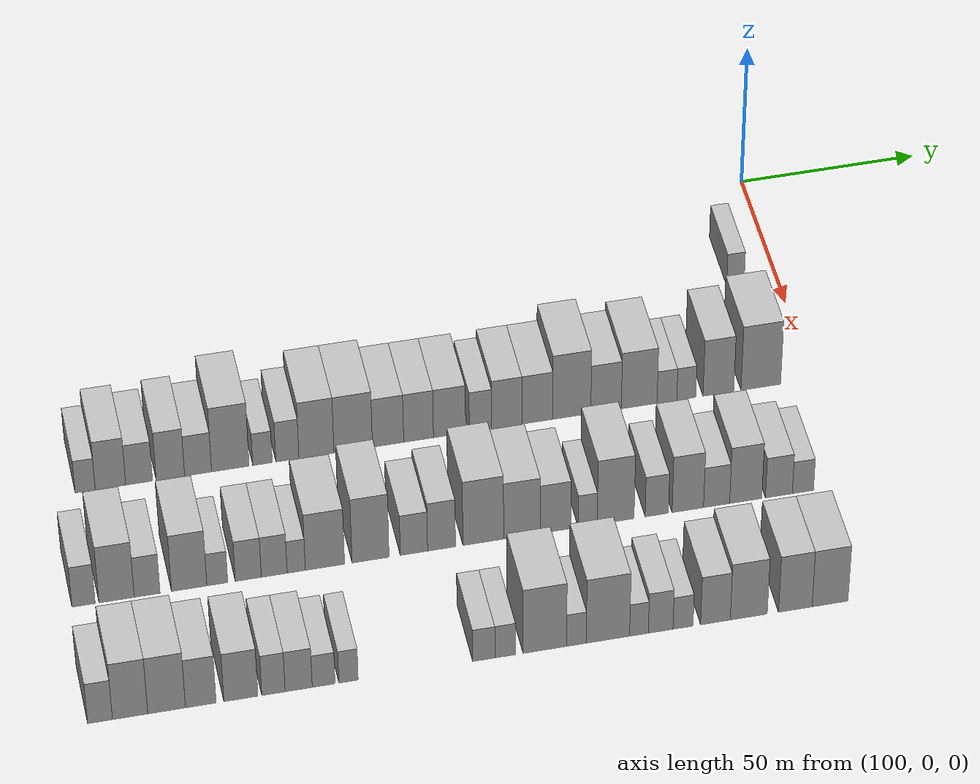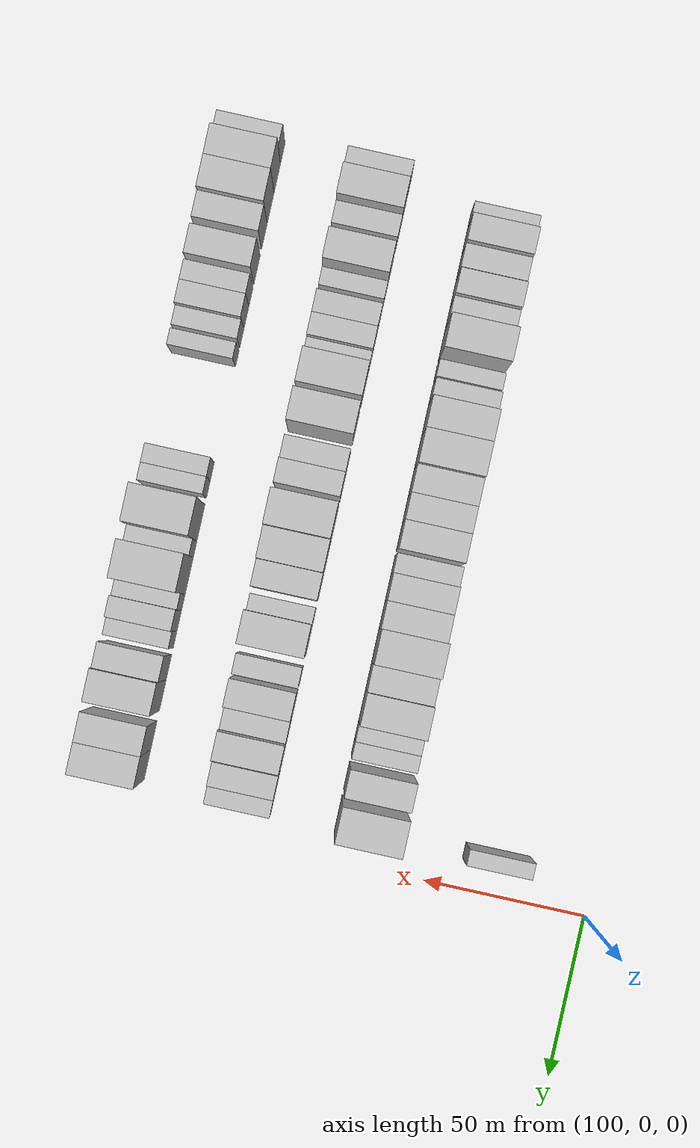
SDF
<sdf version="1.6">
 <world name="default">
  <model name="building_345">
   <static>1</static>
   <pose>130.0000 -11.8070 0 0.000000 0.000000 0.000000</pose>
   <link name="link">
    <pose>0 0 6.00 0 0 0</pose>
    <collision name="collision"><geometry><box><size>20.0000 4.9695 12.0000</size></box></geometry></collision>
    <visual name="visual">
     <cast_shadows>0</cast_shadows>
     <geometry><box><size>20.0000 4.9695 12.0000</size></box></geometry>
     <material>
      <script>
       <uri>model://HANNAS_wall/materials/scripts</uri>
       <uri>model://HANNAS_wall/materials/textures</uri>
       <name>vrc/HANNAS_wall</name>
      </script>
     </material>
    </visual>
   </link>
  </model>
  <model name="building_460">
   <static>1</static>
   <pose>170.0000 -198.8840 0 0.000000 0.000000 0.000000</pose>
   <link name="link">
    <pose>0 0 6.00 0 0 0</pose>
    <collision name="collision"><geometry><box><size>20.0000 5.3824 12.0000</size></box></geometry></collision>
    <visual name="visual">
     <cast_shadows>0</cast_shadows>
     <geometry><box><size>20.0000 5.3824 12.0000</size></box></geometry>
     <material>
      <script>
       <uri>model://HANNAS_wall/materials/scripts</uri>
       <uri>model://HANNAS_wall/materials/textures</uri>
       <name>vrc/HANNAS_wall</name>
      </script>
     </material>
    </visual>
   </link>
  </model>
  <model name="building_461">
   <static>1</static>
   <pose>170.0000 -192.1136 0 0.000000 0.000000 0.000000</pose>
   <link name="link">
    <pose>0 0 9.00 0 0 0</pose>
    <collision name="collision"><geometry><box><size>20.0000 8.1584 18.0000</size></box></geometry></collision>
    <visual name="visual">
     <cast_shadows>0</cast_shadows>
     <geometry><box><size>20.0000 8.1584 18.0000</size></box></geometry>
     <material>
      <script>
       <uri>model://HANNAS_wall/materials/scripts</uri>
       <uri>model://HANNAS_wall/materials/textures</uri>
       <name>vrc/HANNAS_wall</name>
      </script>
     </material>
    </visual>
   </link>
  </model>
  <model name="building_462">
   <static>1</static>
   <pose>170.0000 -184.4516 0 0.000000 0.000000 0.000000</pose>
   <link name="link">
    <pose>0 0 7.50 0 0 0</pose>
    <collision name="collision"><geometry><box><size>20.0000 7.1656 15.0000</size></box></geometry></collision>
    <visual name="visual">
     <cast_shadows>0</cast_shadows>
     <geometry><box><size>20.0000 7.1656 15.0000</size></box></geometry>
     <material>
      <script>
       <uri>model://HANNAS_wall/materials/scripts</uri>
       <uri>model://HANNAS_wall/materials/textures</uri>
       <name>vrc/HANNAS_wall</name>
      </script>
     </material>
    </visual>
   </link>
  </model>
  <model name="building_463">
   <static>1</static>
   <pose>170.0000 -176.0557 0 0.000000 0.000000 0.000000</pose>
   <link name="link">
    <pose>0 0 9.00 0 0 0</pose>
    <collision name="collision"><geometry><box><size>20.0000 7.6261 18.0000</size></box></geometry></collision>
    <visual name="visual">
     <cast_shadows>0</cast_shadows>
     <geometry><box><size>20.0000 7.6261 18.0000</size></box></geometry>
     <material>
      <script>
       <uri>model://HANNAS_wall/materials/scripts</uri>
       <uri>model://HANNAS_wall/materials/textures</uri>
       <name>vrc/HANNAS_wall</name>
      </script>
     </material>
    </visual>
   </link>
  </model>
  <model name="building_464">
   <static>1</static>
   <pose>170.0000 -168.6132 0 0.000000 0.000000 0.000000</pose>
   <link name="link">
    <pose>0 0 7.50 0 0 0</pose>
    <collision name="collision"><geometry><box><size>20.0000 7.2589 15.0000</size></box></geometry></collision>
    <visual name="visual">
     <cast_shadows>0</cast_shadows>
     <geometry><box><size>20.0000 7.2589 15.0000</size></box></geometry>
     <material>
      <script>
       <uri>model://HANNAS_wall/materials/scripts</uri>
       <uri>model://HANNAS_wall/materials/textures</uri>
       <name>vrc/HANNAS_wall</name>
      </script>
     </material>
    </visual>
   </link>
  </model>
  <model name="building_465">
   <static>1</static>
   <pose>170.0000 -159.9315 0 0.000000 0.000000 0.000000</pose>
   <link name="link">
    <pose>0 0 12.00 0 0 0</pose>
    <collision name="collision"><geometry><box><size>20.0000 10.1045 24.0000</size></box></geometry></collision>
    <visual name="visual">
     <cast_shadows>0</cast_shadows>
     <geometry><box><size>20.0000 10.1045 24.0000</size></box></geometry>
     <material>
      <script>
       <uri>model://HANNAS_wall/materials/scripts</uri>
       <uri>model://HANNAS_wall/materials/textures</uri>
       <name>vrc/HANNAS_wall</name>
      </script>
     </material>
    </visual>
   </link>
  </model>
  <model name="building_466">
   <static>1</static>
   <pose>170.0000 -151.2619 0 0.000000 0.000000 0.000000</pose>
   <link name="link">
    <pose>0 0 6.00 0 0 0</pose>
    <collision name="collision"><geometry><box><size>20.0000 5.2348 12.0000</size></box></geometry></collision>
    <visual name="visual">
     <cast_shadows>0</cast_shadows>
     <geometry><box><size>20.0000 5.2348 12.0000</size></box></geometry>
     <material>
      <script>
       <uri>model://HANNAS_wall/materials/scripts</uri>
       <uri>model://HANNAS_wall/materials/textures</uri>
       <name>vrc/HANNAS_wall</name>
      </script>
     </material>
    </visual>
   </link>
  </model>
  <model name="building_467">
   <static>1</static>
   <pose>170.0000 -144.5285 0 0.000000 0.000000 0.000000</pose>
   <link name="link">
    <pose>0 0 7.50 0 0 0</pose>
    <collision name="collision"><geometry><box><size>20.0000 6.2319 15.0000</size></box></geometry></collision>
    <visual name="visual">
     <cast_shadows>0</cast_shadows>
     <geometry><box><size>20.0000 6.2319 15.0000</size></box></geometry>
     <material>
      <script>
       <uri>model://HANNAS_wall/materials/scripts</uri>
       <uri>model://HANNAS_wall/materials/textures</uri>
       <name>vrc/HANNAS_wall</name>
      </script>
     </material>
    </visual>
   </link>
  </model>
  <model name="building_468">
   <static>1</static>
   <pose>170.0000 -136.6634 0 0.000000 0.000000 0.000000</pose>
   <link name="link">
    <pose>0 0 10.50 0 0 0</pose>
    <collision name="collision"><geometry><box><size>20.0000 9.4982 21.0000</size></box></geometry></collision>
    <visual name="visual">
     <cast_shadows>0</cast_shadows>
     <geometry><box><size>20.0000 9.4982 21.0000</size></box></geometry>
     <material>
      <script>
       <uri>model://HANNAS_wall/materials/scripts</uri>
       <uri>model://HANNAS_wall/materials/textures</uri>
       <name>vrc/HANNAS_wall</name>
      </script>
     </material>
    </visual>
   </link>
  </model>
  <model name="building_469">
   <static>1</static>
   <pose>170.0000 -126.7007 0 0.000000 0.000000 0.000000</pose>
   <link name="link">
    <pose>0 0 10.50 0 0 0</pose>
    <collision name="collision"><geometry><box><size>20.0000 10.4273 21.0000</size></box></geometry></collision>
    <visual name="visual">
     <cast_shadows>0</cast_shadows>
     <geometry><box><size>20.0000 10.4273 21.0000</size></box></geometry>
     <material>
      <script>
       <uri>model://HANNAS_wall/materials/scripts</uri>
       <uri>model://HANNAS_wall/materials/textures</uri>
       <name>vrc/HANNAS_wall</name>
      </script>
     </material>
    </visual>
   </link>
  </model>
  <model name="building_470">
   <static>1</static>
   <pose>170.0000 -117.2380 0 0.000000 0.000000 0.000000</pose>
   <link name="link">
    <pose>0 0 9.00 0 0 0</pose>
    <collision name="collision"><geometry><box><size>20.0000 8.4981 18.0000</size></box></geometry></collision>
    <visual name="visual">
     <cast_shadows>0</cast_shadows>
     <geometry><box><size>20.0000 8.4981 18.0000</size></box></geometry>
     <material>
      <script>
       <uri>model://HANNAS_wall/materials/scripts</uri>
       <uri>model://HANNAS_wall/materials/textures</uri>
       <name>vrc/HANNAS_wall</name>
      </script>
     </material>
    </visual>
   </link>
  </model>
  <model name="building_471">
   <static>1</static>
   <pose>170.0000 -108.9257 0 0.000000 0.000000 0.000000</pose>
   <link name="link">
    <pose>0 0 9.00 0 0 0</pose>
    <collision name="collision"><geometry><box><size>20.0000 8.1265 18.0000</size></box></geometry></collision>
    <visual name="visual">
     <cast_shadows>0</cast_shadows>
     <geometry><box><size>20.0000 8.1265 18.0000</size></box></geometry>
     <material>
      <script>
       <uri>model://HANNAS_wall/materials/scripts</uri>
       <uri>model://HANNAS_wall/materials/textures</uri>
       <name>vrc/HANNAS_wall</name>
      </script>
     </material>
    </visual>
   </link>
  </model>
  <model name="building_472">
   <static>1</static>
   <pose>170.0000 -100.4618 0 0.000000 0.000000 0.000000</pose>
   <link name="link">
    <pose>0 0 9.00 0 0 0</pose>
    <collision name="collision"><geometry><box><size>20.0000 8.8011 18.0000</size></box></geometry></collision>
    <visual name="visual">
     <cast_shadows>0</cast_shadows>
     <geometry><box><size>20.0000 8.8011 18.0000</size></box></geometry>
     <material>
      <script>
       <uri>model://HANNAS_wall/materials/scripts</uri>
       <uri>model://HANNAS_wall/materials/textures</uri>
       <name>vrc/HANNAS_wall</name>
      </script>
     </material>
    </visual>
   </link>
  </model>
  <model name="building_473">
   <static>1</static>
   <pose>170.0000 -92.0068 0 0.000000 0.000000 0.000000</pose>
   <link name="link">
    <pose>0 0 7.50 0 0 0</pose>
    <collision name="collision"><geometry><box><size>20.0000 6.1089 15.0000</size></box></geometry></collision>
    <visual name="visual">
     <cast_shadows>0</cast_shadows>
     <geometry><box><size>20.0000 6.1089 15.0000</size></box></geometry>
     <material>
      <script>
       <uri>model://HANNAS_wall/materials/scripts</uri>
       <uri>model://HANNAS_wall/materials/textures</uri>
       <name>vrc/HANNAS_wall</name>
      </script>
     </material>
    </visual>
   </link>
  </model>
  <model name="building_474">
   <static>1</static>
   <pose>170.0000 -84.8008 0 0.000000 0.000000 0.000000</pose>
   <link name="link">
    <pose>0 0 9.00 0 0 0</pose>
    <collision name="collision"><geometry><box><size>20.0000 8.3031 18.0000</size></box></geometry></collision>
    <visual name="visual">
     <cast_shadows>0</cast_shadows>
     <geometry><box><size>20.0000 8.3031 18.0000</size></box></geometry>
     <material>
      <script>
       <uri>model://HANNAS_wall/materials/scripts</uri>
       <uri>model://HANNAS_wall/materials/textures</uri>
       <name>vrc/HANNAS_wall</name>
      </script>
     </material>
    </visual>
   </link>
  </model>
  <model name="building_475">
   <static>1</static>
   <pose>170.0000 -76.4281 0 0.000000 0.000000 0.000000</pose>
   <link name="link">
    <pose>0 0 9.00 0 0 0</pose>
    <collision name="collision"><geometry><box><size>20.0000 8.4422 18.0000</size></box></geometry></collision>
    <visual name="visual">
     <cast_shadows>0</cast_shadows>
     <geometry><box><size>20.0000 8.4422 18.0000</size></box></geometry>
     <material>
      <script>
       <uri>model://HANNAS_wall/materials/scripts</uri>
       <uri>model://HANNAS_wall/materials/textures</uri>
       <name>vrc/HANNAS_wall</name>
      </script>
     </material>
    </visual>
   </link>
  </model>
  <model name="building_476">
   <static>1</static>
   <pose>170.0000 -66.9580 0 0.000000 0.000000 0.000000</pose>
   <link name="link">
    <pose>0 0 12.00 0 0 0</pose>
    <collision name="collision"><geometry><box><size>20.0000 10.4980 24.0000</size></box></geometry></collision>
    <visual name="visual">
     <cast_shadows>0</cast_shadows>
     <geometry><box><size>20.0000 10.4980 24.0000</size></box></geometry>
     <material>
      <script>
       <uri>model://HANNAS_wall/materials/scripts</uri>
       <uri>model://HANNAS_wall/materials/textures</uri>
       <name>vrc/HANNAS_wall</name>
      </script>
     </material>
    </visual>
   </link>
  </model>
  <model name="building_477">
   <static>1</static>
   <pose>170.0000 -57.5117 0 0.000000 0.000000 0.000000</pose>
   <link name="link">
    <pose>0 0 9.00 0 0 0</pose>
    <collision name="collision"><geometry><box><size>20.0000 8.3945 18.0000</size></box></geometry></collision>
    <visual name="visual">
     <cast_shadows>0</cast_shadows>
     <geometry><box><size>20.0000 8.3945 18.0000</size></box></geometry>
     <material>
      <script>
       <uri>model://HANNAS_wall/materials/scripts</uri>
       <uri>model://HANNAS_wall/materials/textures</uri>
       <name>vrc/HANNAS_wall</name>
      </script>
     </material>
    </visual>
   </link>
  </model>
  <model name="building_478">
   <static>1</static>
   <pose>170.0000 -48.3694 0 0.000000 0.000000 0.000000</pose>
   <link name="link">
    <pose>0 0 10.50 0 0 0</pose>
    <collision name="collision"><geometry><box><size>20.0000 9.8902 21.0000</size></box></geometry></collision>
    <visual name="visual">
     <cast_shadows>0</cast_shadows>
     <geometry><box><size>20.0000 9.8902 21.0000</size></box></geometry>
     <material>
      <script>
       <uri>model://HANNAS_wall/materials/scripts</uri>
       <uri>model://HANNAS_wall/materials/textures</uri>
       <name>vrc/HANNAS_wall</name>
      </script>
     </material>
    </visual>
   </link>
  </model>
  <model name="building_479">
   <static>1</static>
   <pose>170.0000 -40.6922 0 0.000000 0.000000 0.000000</pose>
   <link name="link">
    <pose>0 0 6.00 0 0 0</pose>
    <collision name="collision"><geometry><box><size>20.0000 5.4642 12.0000</size></box></geometry></collision>
    <visual name="visual">
     <cast_shadows>0</cast_shadows>
     <geometry><box><size>20.0000 5.4642 12.0000</size></box></geometry>
     <material>
      <script>
       <uri>model://HANNAS_wall/materials/scripts</uri>
       <uri>model://HANNAS_wall/materials/textures</uri>
       <name>vrc/HANNAS_wall</name>
      </script>
     </material>
    </visual>
   </link>
  </model>
  <model name="building_480">
   <static>1</static>
   <pose>170.0000 -35.3330 0 0.000000 0.000000 0.000000</pose>
   <link name="link">
    <pose>0 0 6.00 0 0 0</pose>
    <collision name="collision"><geometry><box><size>20.0000 5.2542 12.0000</size></box></geometry></collision>
    <visual name="visual">
     <cast_shadows>0</cast_shadows>
     <geometry><box><size>20.0000 5.2542 12.0000</size></box></geometry>
     <material>
      <script>
       <uri>model://HANNAS_wall/materials/scripts</uri>
       <uri>model://HANNAS_wall/materials/textures</uri>
       <name>vrc/HANNAS_wall</name>
      </script>
     </material>
    </visual>
   </link>
  </model>
  <model name="building_481">
   <static>1</static>
   <pose>170.0000 -26.4306 0 0.000000 0.000000 0.000000</pose>
   <link name="link">
    <pose>0 0 10.50 0 0 0</pose>
    <collision name="collision"><geometry><box><size>20.0000 8.5505 21.0000</size></box></geometry></collision>
    <visual name="visual">
     <cast_shadows>0</cast_shadows>
     <geometry><box><size>20.0000 8.5505 21.0000</size></box></geometry>
     <material>
      <script>
       <uri>model://HANNAS_wall/materials/scripts</uri>
       <uri>model://HANNAS_wall/materials/textures</uri>
       <name>vrc/HANNAS_wall</name>
      </script>
     </material>
    </visual>
   </link>
  </model>
  <model name="building_482">
   <static>1</static>
   <pose>170.0000 -14.6425 0 0.000000 0.000000 0.000000</pose>
   <link name="link">
    <pose>0 0 12.00 0 0 0</pose>
    <collision name="collision"><geometry><box><size>20.0000 11.0256 24.0000</size></box></geometry></collision>
    <visual name="visual">
     <cast_shadows>0</cast_shadows>
     <geometry><box><size>20.0000 11.0256 24.0000</size></box></geometry>
     <material>
      <script>
       <uri>model://HANNAS_wall/materials/scripts</uri>
       <uri>model://HANNAS_wall/materials/textures</uri>
       <name>vrc/HANNAS_wall</name>
      </script>
     </material>
    </visual>
   </link>
  </model>
  <model name="building_601">
   <static>1</static>
   <pose>210.0000 -205.2574 0 0.000000 0.000000 0.000000</pose>
   <link name="link">
    <pose>0 0 7.50 0 0 0</pose>
    <collision name="collision"><geometry><box><size>20.0000 6.0528 15.0000</size></box></geometry></collision>
    <visual name="visual">
     <cast_shadows>0</cast_shadows>
     <geometry><box><size>20.0000 6.0528 15.0000</size></box></geometry>
     <material>
      <script>
       <uri>model://HANNAS_wall/materials/scripts</uri>
       <uri>model://HANNAS_wall/materials/textures</uri>
       <name>vrc/HANNAS_wall</name>
      </script>
     </material>
    </visual>
   </link>
  </model>
  <model name="building_602">
   <static>1</static>
   <pose>210.0000 -196.6105 0 0.000000 0.000000 0.000000</pose>
   <link name="link">
    <pose>0 0 10.50 0 0 0</pose>
    <collision name="collision"><geometry><box><size>20.0000 9.2409 21.0000</size></box></geometry></collision>
    <visual name="visual">
     <cast_shadows>0</cast_shadows>
     <geometry><box><size>20.0000 9.2409 21.0000</size></box></geometry>
     <material>
      <script>
       <uri>model://HANNAS_wall/materials/scripts</uri>
       <uri>model://HANNAS_wall/materials/textures</uri>
       <name>vrc/HANNAS_wall</name>
      </script>
     </material>
    </visual>
   </link>
  </model>
  <model name="building_603">
   <static>1</static>
   <pose>210.0000 -188.6136 0 0.000000 0.000000 0.000000</pose>
   <link name="link">
    <pose>0 0 7.50 0 0 0</pose>
    <collision name="collision"><geometry><box><size>20.0000 6.7531 15.0000</size></box></geometry></collision>
    <visual name="visual">
     <cast_shadows>0</cast_shadows>
     <geometry><box><size>20.0000 6.7531 15.0000</size></box></geometry>
     <material>
      <script>
       <uri>model://HANNAS_wall/materials/scripts</uri>
       <uri>model://HANNAS_wall/materials/textures</uri>
       <name>vrc/HANNAS_wall</name>
      </script>
     </material>
    </visual>
   </link>
  </model>
  <model name="building_604">
   <static>1</static>
   <pose>210.0000 -177.5851 0 0.000000 0.000000 0.000000</pose>
   <link name="link">
    <pose>0 0 10.50 0 0 0</pose>
    <collision name="collision"><geometry><box><size>20.0000 9.3037 21.0000</size></box></geometry></collision>
    <visual name="visual">
     <cast_shadows>0</cast_shadows>
     <geometry><box><size>20.0000 9.3037 21.0000</size></box></geometry>
     <material>
      <script>
       <uri>model://HANNAS_wall/materials/scripts</uri>
       <uri>model://HANNAS_wall/materials/textures</uri>
       <name>vrc/HANNAS_wall</name>
      </script>
     </material>
    </visual>
   </link>
  </model>
  <model name="building_605">
   <static>1</static>
   <pose>210.0000 -170.1938 0 0.000000 0.000000 0.000000</pose>
   <link name="link">
    <pose>0 0 6.00 0 0 0</pose>
    <collision name="collision"><geometry><box><size>20.0000 5.4789 12.0000</size></box></geometry></collision>
    <visual name="visual">
     <cast_shadows>0</cast_shadows>
     <geometry><box><size>20.0000 5.4789 12.0000</size></box></geometry>
     <material>
      <script>
       <uri>model://HANNAS_wall/materials/scripts</uri>
       <uri>model://HANNAS_wall/materials/textures</uri>
       <name>vrc/HANNAS_wall</name>
      </script>
     </material>
    </visual>
   </link>
  </model>
  <model name="building_606">
   <static>1</static>
   <pose>210.0000 -162.0174 0 0.000000 0.000000 0.000000</pose>
   <link name="link">
    <pose>0 0 7.50 0 0 0</pose>
    <collision name="collision"><geometry><box><size>20.0000 6.8739 15.0000</size></box></geometry></collision>
    <visual name="visual">
     <cast_shadows>0</cast_shadows>
     <geometry><box><size>20.0000 6.8739 15.0000</size></box></geometry>
     <material>
      <script>
       <uri>model://HANNAS_wall/materials/scripts</uri>
       <uri>model://HANNAS_wall/materials/textures</uri>
       <name>vrc/HANNAS_wall</name>
      </script>
     </material>
    </visual>
   </link>
  </model>
  <model name="building_607">
   <static>1</static>
   <pose>210.0000 -155.1676 0 0.000000 0.000000 0.000000</pose>
   <link name="link">
    <pose>0 0 7.50 0 0 0</pose>
    <collision name="collision"><geometry><box><size>20.0000 6.8256 15.0000</size></box></geometry></collision>
    <visual name="visual">
     <cast_shadows>0</cast_shadows>
     <geometry><box><size>20.0000 6.8256 15.0000</size></box></geometry>
     <material>
      <script>
       <uri>model://HANNAS_wall/materials/scripts</uri>
       <uri>model://HANNAS_wall/materials/textures</uri>
       <name>vrc/HANNAS_wall</name>
      </script>
     </material>
    </visual>
   </link>
  </model>
  <model name="building_608">
   <static>1</static>
   <pose>210.0000 -149.3504 0 0.000000 0.000000 0.000000</pose>
   <link name="link">
    <pose>0 0 6.00 0 0 0</pose>
    <collision name="collision"><geometry><box><size>20.0000 4.8087 12.0000</size></box></geometry></collision>
    <visual name="visual">
     <cast_shadows>0</cast_shadows>
     <geometry><box><size>20.0000 4.8087 12.0000</size></box></geometry>
     <material>
      <script>
       <uri>model://HANNAS_wall/materials/scripts</uri>
       <uri>model://HANNAS_wall/materials/textures</uri>
       <name>vrc/HANNAS_wall</name>
      </script>
     </material>
    </visual>
   </link>
  </model>
  <model name="building_609">
   <static>1</static>
   <pose>210.0000 -141.7589 0 0.000000 0.000000 0.000000</pose>
   <link name="link">
    <pose>0 0 10.50 0 0 0</pose>
    <collision name="collision"><geometry><box><size>20.0000 10.3744 21.0000</size></box></geometry></collision>
    <visual name="visual">
     <cast_shadows>0</cast_shadows>
     <geometry><box><size>20.0000 10.3744 21.0000</size></box></geometry>
     <material>
      <script>
       <uri>model://HANNAS_wall/materials/scripts</uri>
       <uri>model://HANNAS_wall/materials/textures</uri>
       <name>vrc/HANNAS_wall</name>
      </script>
     </material>
    </visual>
   </link>
  </model>
  <model name="building_610">
   <static>1</static>
   <pose>210.0000 -129.6596 0 0.000000 0.000000 0.000000</pose>
   <link name="link">
    <pose>0 0 12.00 0 0 0</pose>
    <collision name="collision"><geometry><box><size>20.0000 9.8242 24.0000</size></box></geometry></collision>
    <visual name="visual">
     <cast_shadows>0</cast_shadows>
     <geometry><box><size>20.0000 9.8242 24.0000</size></box></geometry>
     <material>
      <script>
       <uri>model://HANNAS_wall/materials/scripts</uri>
       <uri>model://HANNAS_wall/materials/textures</uri>
       <name>vrc/HANNAS_wall</name>
      </script>
     </material>
    </visual>
   </link>
  </model>
  <model name="building_611">
   <static>1</static>
   <pose>210.0000 -118.1102 0 0.000000 0.000000 0.000000</pose>
   <link name="link">
    <pose>0 0 7.50 0 0 0</pose>
    <collision name="collision"><geometry><box><size>20.0000 7.2744 15.0000</size></box></geometry></collision>
    <visual name="visual">
     <cast_shadows>0</cast_shadows>
     <geometry><box><size>20.0000 7.2744 15.0000</size></box></geometry>
     <material>
      <script>
       <uri>model://HANNAS_wall/materials/scripts</uri>
       <uri>model://HANNAS_wall/materials/textures</uri>
       <name>vrc/HANNAS_wall</name>
      </script>
     </material>
    </visual>
   </link>
  </model>
  <model name="building_612">
   <static>1</static>
   <pose>210.0000 -110.7528 0 0.000000 0.000000 0.000000</pose>
   <link name="link">
    <pose>0 0 9.00 0 0 0</pose>
    <collision name="collision"><geometry><box><size>20.0000 7.4405 18.0000</size></box></geometry></collision>
    <visual name="visual">
     <cast_shadows>0</cast_shadows>
     <geometry><box><size>20.0000 7.4405 18.0000</size></box></geometry>
     <material>
      <script>
       <uri>model://HANNAS_wall/materials/scripts</uri>
       <uri>model://HANNAS_wall/materials/textures</uri>
       <name>vrc/HANNAS_wall</name>
      </script>
     </material>
    </visual>
   </link>
  </model>
  <model name="building_613">
   <static>1</static>
   <pose>210.0000 -99.5945 0 0.000000 0.000000 0.000000</pose>
   <link name="link">
    <pose>0 0 12.00 0 0 0</pose>
    <collision name="collision"><geometry><box><size>20.0000 10.8760 24.0000</size></box></geometry></collision>
    <visual name="visual">
     <cast_shadows>0</cast_shadows>
     <geometry><box><size>20.0000 10.8760 24.0000</size></box></geometry>
     <material>
      <script>
       <uri>model://HANNAS_wall/materials/scripts</uri>
       <uri>model://HANNAS_wall/materials/textures</uri>
       <name>vrc/HANNAS_wall</name>
      </script>
     </material>
    </visual>
   </link>
  </model>
  <model name="building_614">
   <static>1</static>
   <pose>210.0000 -89.2418 0 0.000000 0.000000 0.000000</pose>
   <link name="link">
    <pose>0 0 10.50 0 0 0</pose>
    <collision name="collision"><geometry><box><size>20.0000 9.8294 21.0000</size></box></geometry></collision>
    <visual name="visual">
     <cast_shadows>0</cast_shadows>
     <geometry><box><size>20.0000 9.8294 21.0000</size></box></geometry>
     <material>
      <script>
       <uri>model://HANNAS_wall/materials/scripts</uri>
       <uri>model://HANNAS_wall/materials/textures</uri>
       <name>vrc/HANNAS_wall</name>
      </script>
     </material>
    </visual>
   </link>
  </model>
  <model name="building_615">
   <static>1</static>
   <pose>210.0000 -80.2219 0 0.000000 0.000000 0.000000</pose>
   <link name="link">
    <pose>0 0 9.00 0 0 0</pose>
    <collision name="collision"><geometry><box><size>20.0000 8.2106 18.0000</size></box></geometry></collision>
    <visual name="visual">
     <cast_shadows>0</cast_shadows>
     <geometry><box><size>20.0000 8.2106 18.0000</size></box></geometry>
     <material>
      <script>
       <uri>model://HANNAS_wall/materials/scripts</uri>
       <uri>model://HANNAS_wall/materials/textures</uri>
       <name>vrc/HANNAS_wall</name>
      </script>
     </material>
    </visual>
   </link>
  </model>
  <model name="building_616">
   <static>1</static>
   <pose>210.0000 -71.5621 0 0.000000 0.000000 0.000000</pose>
   <link name="link">
    <pose>0 0 6.00 0 0 0</pose>
    <collision name="collision"><geometry><box><size>20.0000 5.1090 12.0000</size></box></geometry></collision>
    <visual name="visual">
     <cast_shadows>0</cast_shadows>
     <geometry><box><size>20.0000 5.1090 12.0000</size></box></geometry>
     <material>
      <script>
       <uri>model://HANNAS_wall/materials/scripts</uri>
       <uri>model://HANNAS_wall/materials/textures</uri>
       <name>vrc/HANNAS_wall</name>
      </script>
     </material>
    </visual>
   </link>
  </model>
  <model name="building_617">
   <static>1</static>
   <pose>210.0000 -64.0339 0 0.000000 0.000000 0.000000</pose>
   <link name="link">
    <pose>0 0 12.00 0 0 0</pose>
    <collision name="collision"><geometry><box><size>20.0000 9.9475 24.0000</size></box></geometry></collision>
    <visual name="visual">
     <cast_shadows>0</cast_shadows>
     <geometry><box><size>20.0000 9.9475 24.0000</size></box></geometry>
     <material>
      <script>
       <uri>model://HANNAS_wall/materials/scripts</uri>
       <uri>model://HANNAS_wall/materials/textures</uri>
       <name>vrc/HANNAS_wall</name>
      </script>
     </material>
    </visual>
   </link>
  </model>
  <model name="building_618">
   <static>1</static>
   <pose>210.0000 -52.9132 0 0.000000 0.000000 0.000000</pose>
   <link name="link">
    <pose>0 0 7.50 0 0 0</pose>
    <collision name="collision"><geometry><box><size>20.0000 6.2937 15.0000</size></box></geometry></collision>
    <visual name="visual">
     <cast_shadows>0</cast_shadows>
     <geometry><box><size>20.0000 6.2937 15.0000</size></box></geometry>
     <material>
      <script>
       <uri>model://HANNAS_wall/materials/scripts</uri>
       <uri>model://HANNAS_wall/materials/textures</uri>
       <name>vrc/HANNAS_wall</name>
      </script>
     </material>
    </visual>
   </link>
  </model>
  <model name="building_619">
   <static>1</static>
   <pose>210.0000 -44.5080 0 0.000000 0.000000 0.000000</pose>
   <link name="link">
    <pose>0 0 10.50 0 0 0</pose>
    <collision name="collision"><geometry><box><size>20.0000 8.5167 21.0000</size></box></geometry></collision>
    <visual name="visual">
     <cast_shadows>0</cast_shadows>
     <geometry><box><size>20.0000 8.5167 21.0000</size></box></geometry>
     <material>
      <script>
       <uri>model://HANNAS_wall/materials/scripts</uri>
       <uri>model://HANNAS_wall/materials/textures</uri>
       <name>vrc/HANNAS_wall</name>
      </script>
     </material>
    </visual>
   </link>
  </model>
  <model name="building_620">
   <static>1</static>
   <pose>210.0000 -36.7053 0 0.000000 0.000000 0.000000</pose>
   <link name="link">
    <pose>0 0 7.50 0 0 0</pose>
    <collision name="collision"><geometry><box><size>20.0000 7.0887 15.0000</size></box></geometry></collision>
    <visual name="visual">
     <cast_shadows>0</cast_shadows>
     <geometry><box><size>20.0000 7.0887 15.0000</size></box></geometry>
     <material>
      <script>
       <uri>model://HANNAS_wall/materials/scripts</uri>
       <uri>model://HANNAS_wall/materials/textures</uri>
       <name>vrc/HANNAS_wall</name>
      </script>
     </material>
    </visual>
   </link>
  </model>
  <model name="building_621">
   <static>1</static>
   <pose>210.0000 -28.7943 0 0.000000 0.000000 0.000000</pose>
   <link name="link">
    <pose>0 0 10.50 0 0 0</pose>
    <collision name="collision"><geometry><box><size>20.0000 8.7333 21.0000</size></box></geometry></collision>
    <visual name="visual">
     <cast_shadows>0</cast_shadows>
     <geometry><box><size>20.0000 8.7333 21.0000</size></box></geometry>
     <material>
      <script>
       <uri>model://HANNAS_wall/materials/scripts</uri>
       <uri>model://HANNAS_wall/materials/textures</uri>
       <name>vrc/HANNAS_wall</name>
      </script>
     </material>
    </visual>
   </link>
  </model>
  <model name="building_622">
   <static>1</static>
   <pose>210.0000 -19.7703 0 0.000000 0.000000 0.000000</pose>
   <link name="link">
    <pose>0 0 7.50 0 0 0</pose>
    <collision name="collision"><geometry><box><size>20.0000 7.3146 15.0000</size></box></geometry></collision>
    <visual name="visual">
     <cast_shadows>0</cast_shadows>
     <geometry><box><size>20.0000 7.3146 15.0000</size></box></geometry>
     <material>
      <script>
       <uri>model://HANNAS_wall/materials/scripts</uri>
       <uri>model://HANNAS_wall/materials/textures</uri>
       <name>vrc/HANNAS_wall</name>
      </script>
     </material>
    </visual>
   </link>
  </model>
  <model name="building_623">
   <static>1</static>
   <pose>210.0000 -13.2106 0 0.000000 0.000000 0.000000</pose>
   <link name="link">
    <pose>0 0 6.00 0 0 0</pose>
    <collision name="collision"><geometry><box><size>20.0000 5.8049 12.0000</size></box></geometry></collision>
    <visual name="visual">
     <cast_shadows>0</cast_shadows>
     <geometry><box><size>20.0000 5.8049 12.0000</size></box></geometry>
     <material>
      <script>
       <uri>model://HANNAS_wall/materials/scripts</uri>
       <uri>model://HANNAS_wall/materials/textures</uri>
       <name>vrc/HANNAS_wall</name>
      </script>
     </material>
    </visual>
   </link>
  </model>
  <model name="building_741">
   <static>1</static>
   <pose>250.0000 -207.0063 0 0.000000 0.000000 0.000000</pose>
   <link name="link">
    <pose>0 0 7.50 0 0 0</pose>
    <collision name="collision"><geometry><box><size>20.0000 6.3609 15.0000</size></box></geometry></collision>
    <visual name="visual">
     <cast_shadows>0</cast_shadows>
     <geometry><box><size>20.0000 6.3609 15.0000</size></box></geometry>
     <material>
      <script>
       <uri>model://HANNAS_wall/materials/scripts</uri>
       <uri>model://HANNAS_wall/materials/textures</uri>
       <name>vrc/HANNAS_wall</name>
      </script>
     </material>
    </visual>
   </link>
  </model>
  <model name="building_742">
   <static>1</static>
   <pose>250.0000 -199.3080 0 0.000000 0.000000 0.000000</pose>
   <link name="link">
    <pose>0 0 10.50 0 0 0</pose>
    <collision name="collision"><geometry><box><size>20.0000 9.0356 21.0000</size></box></geometry></collision>
    <visual name="visual">
     <cast_shadows>0</cast_shadows>
     <geometry><box><size>20.0000 9.0356 21.0000</size></box></geometry>
     <material>
      <script>
       <uri>model://HANNAS_wall/materials/scripts</uri>
       <uri>model://HANNAS_wall/materials/textures</uri>
       <name>vrc/HANNAS_wall</name>
      </script>
     </material>
    </visual>
   </link>
  </model>
  <model name="building_743">
   <static>1</static>
   <pose>250.0000 -189.9543 0 0.000000 0.000000 0.000000</pose>
   <link name="link">
    <pose>0 0 10.50 0 0 0</pose>
    <collision name="collision"><geometry><box><size>20.0000 9.6719 21.0000</size></box></geometry></collision>
    <visual name="visual">
     <cast_shadows>0</cast_shadows>
     <geometry><box><size>20.0000 9.6719 21.0000</size></box></geometry>
     <material>
      <script>
       <uri>model://HANNAS_wall/materials/scripts</uri>
       <uri>model://HANNAS_wall/materials/textures</uri>
       <name>vrc/HANNAS_wall</name>
      </script>
     </material>
    </visual>
   </link>
  </model>
  <model name="building_744">
   <static>1</static>
   <pose>250.0000 -181.1864 0 0.000000 0.000000 0.000000</pose>
   <link name="link">
    <pose>0 0 9.00 0 0 0</pose>
    <collision name="collision"><geometry><box><size>20.0000 7.8638 18.0000</size></box></geometry></collision>
    <visual name="visual">
     <cast_shadows>0</cast_shadows>
     <geometry><box><size>20.0000 7.8638 18.0000</size></box></geometry>
     <material>
      <script>
       <uri>model://HANNAS_wall/materials/scripts</uri>
       <uri>model://HANNAS_wall/materials/textures</uri>
       <name>vrc/HANNAS_wall</name>
      </script>
     </material>
    </visual>
   </link>
  </model>
  <model name="building_745">
   <static>1</static>
   <pose>250.0000 -170.8692 0 0.000000 0.000000 0.000000</pose>
   <link name="link">
    <pose>0 0 9.00 0 0 0</pose>
    <collision name="collision"><geometry><box><size>20.0000 8.7707 18.0000</size></box></geometry></collision>
    <visual name="visual">
     <cast_shadows>0</cast_shadows>
     <geometry><box><size>20.0000 8.7707 18.0000</size></box></geometry>
     <material>
      <script>
       <uri>model://HANNAS_wall/materials/scripts</uri>
       <uri>model://HANNAS_wall/materials/textures</uri>
       <name>vrc/HANNAS_wall</name>
      </script>
     </material>
    </visual>
   </link>
  </model>
  <model name="building_746">
   <static>1</static>
   <pose>250.0000 -162.4691 0 0.000000 0.000000 0.000000</pose>
   <link name="link">
    <pose>0 0 7.50 0 0 0</pose>
    <collision name="collision"><geometry><box><size>20.0000 6.0294 15.0000</size></box></geometry></collision>
    <visual name="visual">
     <cast_shadows>0</cast_shadows>
     <geometry><box><size>20.0000 6.0294 15.0000</size></box></geometry>
     <material>
      <script>
       <uri>model://HANNAS_wall/materials/scripts</uri>
       <uri>model://HANNAS_wall/materials/textures</uri>
       <name>vrc/HANNAS_wall</name>
      </script>
     </material>
    </visual>
   </link>
  </model>
  <model name="building_747">
   <static>1</static>
   <pose>250.0000 -155.9486 0 0.000000 0.000000 0.000000</pose>
   <link name="link">
    <pose>0 0 7.50 0 0 0</pose>
    <collision name="collision"><geometry><box><size>20.0000 7.0118 15.0000</size></box></geometry></collision>
    <visual name="visual">
     <cast_shadows>0</cast_shadows>
     <geometry><box><size>20.0000 7.0118 15.0000</size></box></geometry>
     <material>
      <script>
       <uri>model://HANNAS_wall/materials/scripts</uri>
       <uri>model://HANNAS_wall/materials/textures</uri>
       <name>vrc/HANNAS_wall</name>
      </script>
     </material>
    </visual>
   </link>
  </model>
  <model name="building_748">
   <static>1</static>
   <pose>250.0000 -149.4951 0 0.000000 0.000000 0.000000</pose>
   <link name="link">
    <pose>0 0 6.00 0 0 0</pose>
    <collision name="collision"><geometry><box><size>20.0000 5.8950 12.0000</size></box></geometry></collision>
    <visual name="visual">
     <cast_shadows>0</cast_shadows>
     <geometry><box><size>20.0000 5.8950 12.0000</size></box></geometry>
     <material>
      <script>
       <uri>model://HANNAS_wall/materials/scripts</uri>
       <uri>model://HANNAS_wall/materials/textures</uri>
       <name>vrc/HANNAS_wall</name>
      </script>
     </material>
    </visual>
   </link>
  </model>
  <model name="building_749">
   <static>1</static>
   <pose>250.0000 -143.0531 0 0.000000 0.000000 0.000000</pose>
   <link name="link">
    <pose>0 0 6.00 0 0 0</pose>
    <collision name="collision"><geometry><box><size>20.0000 4.9890 12.0000</size></box></geometry></collision>
    <visual name="visual">
     <cast_shadows>0</cast_shadows>
     <geometry><box><size>20.0000 4.9890 12.0000</size></box></geometry>
     <material>
      <script>
       <uri>model://HANNAS_wall/materials/scripts</uri>
       <uri>model://HANNAS_wall/materials/textures</uri>
       <name>vrc/HANNAS_wall</name>
      </script>
     </material>
    </visual>
   </link>
  </model>
  <model name="building_750">
   <static>1</static>
   <pose>250.0000 -107.8125 0 0.000000 0.000000 0.000000</pose>
   <link name="link">
    <pose>0 0 6.00 0 0 0</pose>
    <collision name="collision"><geometry><box><size>20.0000 5.8307 12.0000</size></box></geometry></collision>
    <visual name="visual">
     <cast_shadows>0</cast_shadows>
     <geometry><box><size>20.0000 5.8307 12.0000</size></box></geometry>
     <material>
      <script>
       <uri>model://HANNAS_wall/materials/scripts</uri>
       <uri>model://HANNAS_wall/materials/textures</uri>
       <name>vrc/HANNAS_wall</name>
      </script>
     </material>
    </visual>
   </link>
  </model>
  <model name="building_751">
   <static>1</static>
   <pose>250.0000 -102.2157 0 0.000000 0.000000 0.000000</pose>
   <link name="link">
    <pose>0 0 6.00 0 0 0</pose>
    <collision name="collision"><geometry><box><size>20.0000 5.3628 12.0000</size></box></geometry></collision>
    <visual name="visual">
     <cast_shadows>0</cast_shadows>
     <geometry><box><size>20.0000 5.3628 12.0000</size></box></geometry>
     <material>
      <script>
       <uri>model://HANNAS_wall/materials/scripts</uri>
       <uri>model://HANNAS_wall/materials/textures</uri>
       <name>vrc/HANNAS_wall</name>
      </script>
     </material>
    </visual>
   </link>
  </model>
  <model name="building_752">
   <static>1</static>
   <pose>250.0000 -91.8281 0 0.000000 0.000000 0.000000</pose>
   <link name="link">
    <pose>0 0 12.00 0 0 0</pose>
    <collision name="collision"><geometry><box><size>20.0000 11.4125 24.0000</size></box></geometry></collision>
    <visual name="visual">
     <cast_shadows>0</cast_shadows>
     <geometry><box><size>20.0000 11.4125 24.0000</size></box></geometry>
     <material>
      <script>
       <uri>model://HANNAS_wall/materials/scripts</uri>
       <uri>model://HANNAS_wall/materials/textures</uri>
       <name>vrc/HANNAS_wall</name>
      </script>
     </material>
    </visual>
   </link>
  </model>
  <model name="building_753">
   <static>1</static>
   <pose>250.0000 -83.5363 0 0.000000 0.000000 0.000000</pose>
   <link name="link">
    <pose>0 0 6.00 0 0 0</pose>
    <collision name="collision"><geometry><box><size>20.0000 5.1711 12.0000</size></box></geometry></collision>
    <visual name="visual">
     <cast_shadows>0</cast_shadows>
     <geometry><box><size>20.0000 5.1711 12.0000</size></box></geometry>
     <material>
      <script>
       <uri>model://HANNAS_wall/materials/scripts</uri>
       <uri>model://HANNAS_wall/materials/textures</uri>
       <name>vrc/HANNAS_wall</name>
      </script>
     </material>
    </visual>
   </link>
  </model>
  <model name="building_754">
   <static>1</static>
   <pose>250.0000 -75.2292 0 0.000000 0.000000 0.000000</pose>
   <link name="link">
    <pose>0 0 12.00 0 0 0</pose>
    <collision name="collision"><geometry><box><size>20.0000 11.4432 24.0000</size></box></geometry></collision>
    <visual name="visual">
     <cast_shadows>0</cast_shadows>
     <geometry><box><size>20.0000 11.4432 24.0000</size></box></geometry>
     <material>
      <script>
       <uri>model://HANNAS_wall/materials/scripts</uri>
       <uri>model://HANNAS_wall/materials/textures</uri>
       <name>vrc/HANNAS_wall</name>
      </script>
     </material>
    </visual>
   </link>
  </model>
  <model name="building_755">
   <static>1</static>
   <pose>250.0000 -67.0357 0 0.000000 0.000000 0.000000</pose>
   <link name="link">
    <pose>0 0 6.00 0 0 0</pose>
    <collision name="collision"><geometry><box><size>20.0000 4.9439 12.0000</size></box></geometry></collision>
    <visual name="visual">
     <cast_shadows>0</cast_shadows>
     <geometry><box><size>20.0000 4.9439 12.0000</size></box></geometry>
     <material>
      <script>
       <uri>model://HANNAS_wall/materials/scripts</uri>
       <uri>model://HANNAS_wall/materials/textures</uri>
       <name>vrc/HANNAS_wall</name>
      </script>
     </material>
    </visual>
   </link>
  </model>
  <model name="building_756">
   <static>1</static>
   <pose>250.0000 -61.3004 0 0.000000 0.000000 0.000000</pose>
   <link name="link">
    <pose>0 0 7.50 0 0 0</pose>
    <collision name="collision"><geometry><box><size>20.0000 6.5267 15.0000</size></box></geometry></collision>
    <visual name="visual">
     <cast_shadows>0</cast_shadows>
     <geometry><box><size>20.0000 6.5267 15.0000</size></box></geometry>
     <material>
      <script>
       <uri>model://HANNAS_wall/materials/scripts</uri>
       <uri>model://HANNAS_wall/materials/textures</uri>
       <name>vrc/HANNAS_wall</name>
      </script>
     </material>
    </visual>
   </link>
  </model>
  <model name="building_757">
   <static>1</static>
   <pose>250.0000 -55.3806 0 0.000000 0.000000 0.000000</pose>
   <link name="link">
    <pose>0 0 6.00 0 0 0</pose>
    <collision name="collision"><geometry><box><size>20.0000 5.3131 12.0000</size></box></geometry></collision>
    <visual name="visual">
     <cast_shadows>0</cast_shadows>
     <geometry><box><size>20.0000 5.3131 12.0000</size></box></geometry>
     <material>
      <script>
       <uri>model://HANNAS_wall/materials/scripts</uri>
       <uri>model://HANNAS_wall/materials/textures</uri>
       <name>vrc/HANNAS_wall</name>
      </script>
     </material>
    </visual>
   </link>
  </model>
  <model name="building_758">
   <static>1</static>
   <pose>250.0000 -46.7899 0 0.000000 0.000000 0.000000</pose>
   <link name="link">
    <pose>0 0 9.00 0 0 0</pose>
    <collision name="collision"><geometry><box><size>20.0000 7.8683 18.0000</size></box></geometry></collision>
    <visual name="visual">
     <cast_shadows>0</cast_shadows>
     <geometry><box><size>20.0000 7.8683 18.0000</size></box></geometry>
     <material>
      <script>
       <uri>model://HANNAS_wall/materials/scripts</uri>
       <uri>model://HANNAS_wall/materials/textures</uri>
       <name>vrc/HANNAS_wall</name>
      </script>
     </material>
    </visual>
   </link>
  </model>
  <model name="building_759">
   <static>1</static>
   <pose>250.0000 -37.9383 0 0.000000 0.000000 0.000000</pose>
   <link name="link">
    <pose>0 0 10.50 0 0 0</pose>
    <collision name="collision"><geometry><box><size>20.0000 9.8349 21.0000</size></box></geometry></collision>
    <visual name="visual">
     <cast_shadows>0</cast_shadows>
     <geometry><box><size>20.0000 9.8349 21.0000</size></box></geometry>
     <material>
      <script>
       <uri>model://HANNAS_wall/materials/scripts</uri>
       <uri>model://HANNAS_wall/materials/textures</uri>
       <name>vrc/HANNAS_wall</name>
      </script>
     </material>
    </visual>
   </link>
  </model>
  <model name="building_760">
   <static>1</static>
   <pose>250.0000 -25.5439 0 0.000000 0.000000 0.000000</pose>
   <link name="link">
    <pose>0 0 10.50 0 0 0</pose>
    <collision name="collision"><geometry><box><size>20.0000 8.9538 21.0000</size></box></geometry></collision>
    <visual name="visual">
     <cast_shadows>0</cast_shadows>
     <geometry><box><size>20.0000 8.9538 21.0000</size></box></geometry>
     <material>
      <script>
       <uri>model://HANNAS_wall/materials/scripts</uri>
       <uri>model://HANNAS_wall/materials/textures</uri>
       <name>vrc/HANNAS_wall</name>
      </script>
     </material>
    </visual>
   </link>
  </model>
  <model name="building_761">
   <static>1</static>
   <pose>250.0000 -16.2785 0 0.000000 0.000000 0.000000</pose>
   <link name="link">
    <pose>0 0 10.50 0 0 0</pose>
    <collision name="collision"><geometry><box><size>20.0000 9.5771 21.0000</size></box></geometry></collision>
    <visual name="visual">
     <cast_shadows>0</cast_shadows>
     <geometry><box><size>20.0000 9.5771 21.0000</size></box></geometry>
     <material>
      <script>
       <uri>model://HANNAS_wall/materials/scripts</uri>
       <uri>model://HANNAS_wall/materials/textures</uri>
       <name>vrc/HANNAS_wall</name>
      </script>
     </material>
    </visual>
   </link>
  </model>
 </world>
</sdf>
